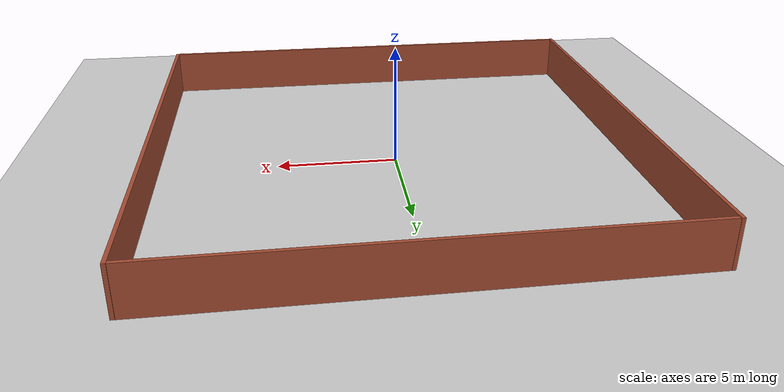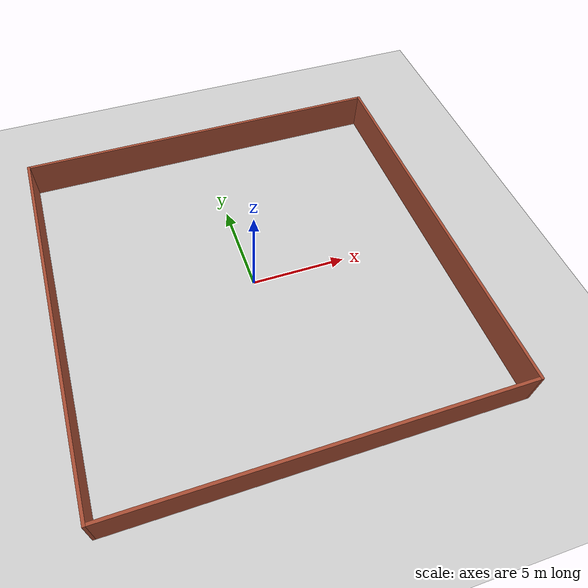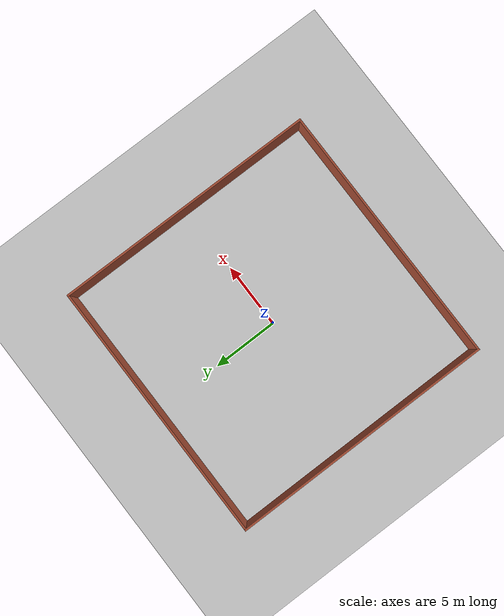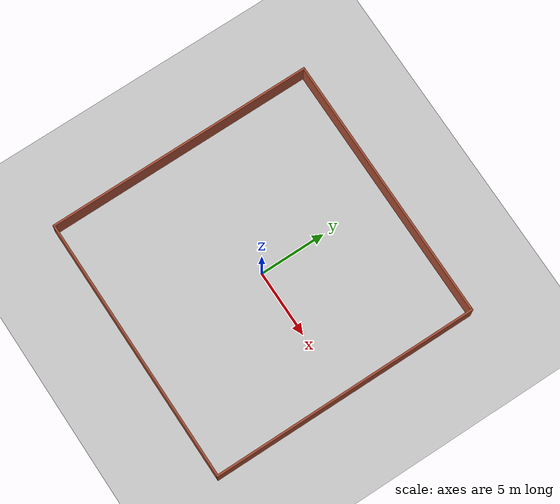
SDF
<sdf version='1.6'>
  <world name='default'>
    <light name='sun' type='directional'>
      <cast_shadows>1</cast_shadows>
      <pose frame=''>0 0 10 0 -0 0</pose>
      <diffuse>0.8 0.8 0.8 1</diffuse>
      <specular>0.2 0.2 0.2 1</specular>
      <attenuation>
        <range>1000</range>
        <constant>0.9</constant>
        <linear>0.01</linear>
        <quadratic>0.001</quadratic>
      </attenuation>
      <direction>-0.5 0.1 -0.9</direction>
    </light>
    <model name='ground_plane'>
      <static>1</static>
      <link name='link'>
        <collision name='collision'>
          <geometry>
            <plane>
              <normal>0 0 1</normal>
              <size>100 100</size>
            </plane>
          </geometry>
          <surface>
            <friction>
              <ode>
                <mu>100</mu>
                <mu2>50</mu2>
              </ode>
              <torsional>
                <ode/>
              </torsional>
            </friction>
            <bounce/>
            <contact>
              <ode/>
            </contact>
          </surface>
          <max_contacts>10</max_contacts>
        </collision>
        <visual name='visual'>
          <cast_shadows>0</cast_shadows>
          <geometry>
            <plane>
              <normal>0 0 1</normal>
              <size>100 100</size>
            </plane>
          </geometry>
          <material>
            <script>
              <uri>file://media/materials/scripts/gazebo.material</uri>
              <name>Gazebo/Grey</name>
            </script>
          </material>
        </visual>
        <velocity_decay>
          <linear>0</linear>
          <angular>0</angular>
        </velocity_decay>
        <self_collide>0</self_collide>
        <kinematic>0</kinematic>
        <gravity>1</gravity>
        <enable_wind>0</enable_wind>
      </link>
    </model>
    <physics name='default_physics' default='0' type='ode'>
      <max_step_size>0.001</max_step_size>
      <real_time_factor>1</real_time_factor>
      <real_time_update_rate>1000</real_time_update_rate>
    </physics>
    <scene>
      <ambient>0.4 0.4 0.4 1</ambient>
      <background>0.7 0.7 0.7 1</background>
      <shadows>1</shadows>
    </scene>
    <spherical_coordinates>
      <surface_model>EARTH_WGS84</surface_model>
      <latitude_deg>0</latitude_deg>
      <longitude_deg>0</longitude_deg>
      <elevation>0</elevation>
      <heading_deg>0</heading_deg>
    </spherical_coordinates>
    <gui fullscreen='0'>
      <camera name='user_camera'>
        <pose frame=''>17.884865 0 16.714762 0 0.794799 3.14</pose>
        <view_controller>orbit</view_controller>
        <projection_type>perspective</projection_type>
      </camera>
    </gui>
    <gravity>0 0 -9.8</gravity>
    <magnetic_field>6e-06 2.3e-05 -4.2e-05</magnetic_field>
    <atmosphere type='adiabatic'/>
    <audio>
      <device>default</device>
    </audio>
    <wind/>

    <model name='Wall_1'>
      <pose frame=''>10.0 0.0 1.0 0 0 1.57</pose>
      <link name='Wall_1_link'>
        <collision name='Wall_1_collision'>
          <geometry>
            <box>
              <size>20.15 0.15 2.0</size>
            </box>
          </geometry>
          <max_contacts>10</max_contacts>
          <surface>
            <contact>
              <ode/>
            </contact>
            <bounce/>
            <friction>
              <torsional>
                <ode/>
              </torsional>
              <ode/>
            </friction>
          </surface>
        </collision>
        <visual name='Wall_1_visual'>
          <geometry>
            <box>
              <size>20.15 0.15 2.0</size>
            </box>
          </geometry>
          <material>
            <script>
              <name>Gazebo/Bricks</name>
              <uri>file://media/materials/scripts/gazebo.material</uri>
            </script>
          </material>
        </visual>
        <self_collide>0</self_collide>
        <enable_wind>0</enable_wind>
        <kinematic>0</kinematic>
      </link>
      <static>true</static>
    </model>

    <model name='Wall_2'>
      <pose frame=''>0.0 10.0 1.0 0 0 0</pose>
      <link name='Wall_2_link'>
        <collision name='Wall_2_collision'>
          <geometry>
            <box>
              <size>19.85 0.15 2.0</size>
            </box>
          </geometry>
          <max_contacts>10</max_contacts>
          <surface>
            <contact>
              <ode/>
            </contact>
            <bounce/>
            <friction>
              <torsional>
                <ode/>
              </torsional>
              <ode/>
            </friction>
          </surface>
        </collision>
        <visual name='Wall_2_visual'>
          <geometry>
            <box>
              <size>19.85 0.15 2.0</size>
            </box>
          </geometry>
          <material>
            <script>
              <name>Gazebo/Bricks</name>
              <uri>file://media/materials/scripts/gazebo.material</uri>
            </script>
          </material>
        </visual>
        <self_collide>0</self_collide>
        <enable_wind>0</enable_wind>
        <kinematic>0</kinematic>
      </link>
      <static>true</static>
    </model>

    <model name='Wall_3'>
      <pose frame=''>-10.0 0.0 1.0 0 0 -1.57</pose>
      <link name='Wall_3_link'>
        <collision name='Wall_3_collision'>
          <geometry>
            <box>
              <size>20.15 0.15 2.0</size>
            </box>
          </geometry>
          <max_contacts>10</max_contacts>
          <surface>
            <contact>
              <ode/>
            </contact>
            <bounce/>
            <friction>
              <torsional>
                <ode/>
              </torsional>
              <ode/>
            </friction>
          </surface>
        </collision>
        <visual name='Wall_3_visual'>
          <geometry>
            <box>
              <size>20.15 0.15 2.0</size>
            </box>
          </geometry>
          <material>
            <script>
              <name>Gazebo/Bricks</name>
              <uri>file://media/materials/scripts/gazebo.material</uri>
            </script>
          </material>
        </visual>
        <self_collide>0</self_collide>
        <enable_wind>0</enable_wind>
        <kinematic>0</kinematic>
      </link>
      <static>true</static>
    </model>

    <model name='Wall_4'>
      <pose frame=''>0.0 -10.0 1.0 0 0 0</pose>
      <link name='Wall_4_link'>
        <collision name='Wall_4_collision'>
          <geometry>
            <box>
              <size>19.85 0.15 2.0</size>
            </box>
          </geometry>
          <max_contacts>10</max_contacts>
          <surface>
            <contact>
              <ode/>
            </contact>
            <bounce/>
            <friction>
              <torsional>
                <ode/>
              </torsional>
              <ode/>
            </friction>
          </surface>
        </collision>
        <visual name='Wall_4_visual'>
          <geometry>
            <box>
              <size>19.85 0.15 2.0</size>
            </box>
          </geometry>
          <material>
            <script>
              <name>Gazebo/Bricks</name>
              <uri>file://media/materials/scripts/gazebo.material</uri>
            </script>
          </material>
        </visual>
        <self_collide>0</self_collide>
        <enable_wind>0</enable_wind>
        <kinematic>0</kinematic>
      </link>
      <static>true</static>
    </model>

  </world>
</sdf>
